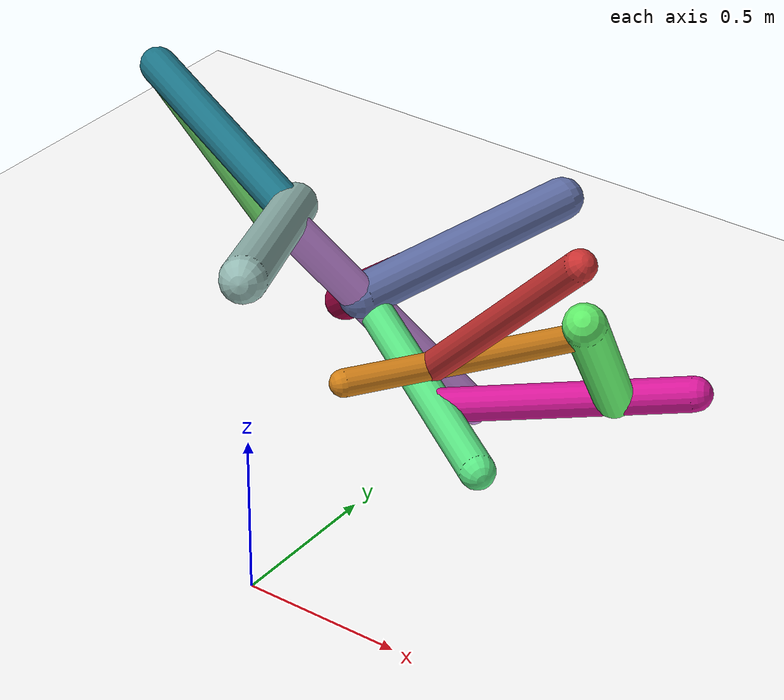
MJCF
<mujoco model="morphology">
  <option timestep="0.01"/>
  <default>
    <default class="/"/>
    <default class="0/"/>
    <default class="0/1/"/>
    <default class="0/1/2/"/>
    <default class="0/3/"/>
    <default class="0/3/4/"/>
    <default class="0/3/4/5/"/>
    <default class="0/3/4/5/6/"/>
    <default class="0/3/4/5/6/7/"/>
    <default class="0/3/4/5/6/7/8/"/>
    <default class="0/3/9/"/>
    <default class="0/3/9/10/"/>
  </default>
  <asset>
    <texture name="texplane" type="2d" builtin="checker" rgb1="0.10000000000000001 0.20000000000000001 0.29999999999999999" rgb2="0.20000000000000001 0.29999999999999999 0.40000000000000002" width="300" height="300"/>
    <material name="MatPlane" class="/" texture="texplane" texrepeat="20 20" specular="1" shininess="1" reflectance="0.5"/>
  </asset>
  <worldbody>
    <light name="//unnamed_light_0" class="/" directional="true" pos="0 0 1.5" dir="0 0 -1.3" cutoff="100" exponent="1" diffuse="1 1 1" specular="0.10000000000000001 0.10000000000000001 0.10000000000000001"/>
    <geom name="ground" class="/" type="plane" size="15 15 0.5" material="MatPlane" rgba="1 1 1 1"/>
    <site name="body" class="/" size="9.9999999999999995e-07 9.9999999999999995e-07 9.9999999999999995e-07" pos="0 0 1.0318636059761048"/>
    <body pos="0 0 1.0318636059761048" name="0/">
      <freejoint name="0/"/>
      <geom name="0/geom" class="0/" type="capsule" contype="1" conaffinity="1" condim="3" size="0.068336899560254766" rgba="0.5885581954393293 0.73568601687289281 0.71047255209427806 1" friction="0.59999999999999998 0.10000000000000001 0.10000000000000001" fromto="0 0 0 -0.39978704759067352 0.74430076005457302 -0.2379741963725347"/>
      <site name="0/end0" class="0/" size="0.0050000000000000001" pos="-0.39978704759067352 0.74430076005457302 -0.2379741963725347"/>
      <site name="0/attach1" class="0/" size="9.9999999999999995e-07 9.9999999999999995e-07 9.9999999999999995e-07" pos="-0.36102633650598853 0.67213827531563575 -0.21490179038340906"/>
      <body pos="-0.36102633650598853 0.67213827531563575 -0.21490179038340906" name="0/1/">
        <joint name="0/1/joint/" class="0/" type="hinge" axis="0 1 0" limited="true" range="-56.78363403545027 56.78363403545027"/>
        <geom name="0/1/geom" class="0/1/" type="capsule" contype="1" conaffinity="1" condim="3" size="0.058904904236065717" rgba="0.10885509416582606 0.46019007337524132 0.53504305222264747 1" friction="0.59999999999999998 0.10000000000000001 0.10000000000000001" fromto="0 0 0 -0.74711531201588155 0.28976524823975258 0.14599575128863229"/>
        <site name="0/1/end1" class="0/1/" size="0.0050000000000000001" pos="-0.74711531201588155 0.28976524823975258 0.14599575128863229"/>
        <site name="0/1/attach2" class="0/1/" size="9.9999999999999995e-07 9.9999999999999995e-07 9.9999999999999995e-07" pos="-0.73947488704344722 0.28680194444556184 0.14450271592170186"/>
        <body pos="-0.73947488704344722 0.28680194444556184 0.14450271592170186" name="0/1/2/">
          <joint name="0/1/2/joint/" class="0/1/" type="hinge" axis="-0.39834816048573363 -0.81913674871922371 -0.41271507112695993" limited="true" range="-37.663630237336633 37.663630237336633"/>
          <geom name="0/1/2/geom" class="0/1/2/" type="capsule" contype="1" conaffinity="1" condim="3" size="0.054754319209131826" rgba="0.41804673174326323 0.82976006626687493 0.39982723925951946 1" friction="0.59999999999999998 0.10000000000000001 0.10000000000000001" fromto="0 0 0 0.34700254124267627 0.11708370875171159 -0.49259959716099239"/>
          <site name="0/1/2/end2" class="0/1/2/" size="0.0050000000000000001" pos="0.34700254124267627 0.11708370875171159 -0.49259959716099239"/>
        </body>
      </body>
      <site name="0/attach3" class="0/" size="9.9999999999999995e-07 9.9999999999999995e-07 9.9999999999999995e-07" pos="-0.30618910669163113 0.57004544345405228 -0.18225979816526963"/>
      <body pos="-0.30618910669163113 0.57004544345405228 -0.18225979816526963" name="0/3/">
        <joint name="0/3/joint/" class="0/" type="hinge" axis="0 0 1" limited="true" range="-68.075280982470517 68.075280982470517"/>
        <geom name="0/3/geom" class="0/3/" type="capsule" contype="1" conaffinity="1" condim="3" size="0.058193082565606909" rgba="0.82978058383089504 0.57952216850923233 0.92671453964288952 1" friction="0.59999999999999998 0.10000000000000001 0.10000000000000001" fromto="0 0 0 0.3683287617090214 0.4558009982762885 -0.74960378385174709"/>
        <site name="0/3/end3" class="0/3/" size="0.0050000000000000001" pos="0.3683287617090214 0.4558009982762885 -0.74960378385174709"/>
        <site name="0/3/attach4" class="0/3/" size="9.9999999999999995e-07 9.9999999999999995e-07 9.9999999999999995e-07" pos="0.17293802433343636 0.21400806107393028 -0.35195458755567033"/>
        <body pos="0.17293802433343636 0.21400806107393028 -0.35195458755567033" name="0/3/4/">
          <joint name="0/3/4/joint/" class="0/3/" type="hinge" axis="-0.92203404995888061 0.20112160773458654 -0.33076171123435577" limited="true" range="-63.777729819706614 63.777729819706614"/>
          <geom name="0/3/4/geom" class="0/3/4/" type="capsule" contype="1" conaffinity="1" condim="3" size="0.053014841186629302" rgba="0.35533491055135813 0.90817863094615148 0.52097804784249035 1" friction="0.59999999999999998 0.10000000000000001 0.10000000000000001" fromto="0 0 0 0.71631052165866937 -0.49904484462467735 -0.01627854569669962"/>
          <site name="0/3/4/end4" class="0/3/4/" size="0.0050000000000000001" pos="0.71631052165866937 -0.49904484462467735 -0.01627854569669962"/>
          <site name="0/3/4/attach5" class="0/3/4/" size="9.9999999999999995e-07 9.9999999999999995e-07 9.9999999999999995e-07" pos="0.43701110002788951 -0.30446032819353042 -0.0099313146277625521"/>
          <body pos="0.43701110002788951 -0.30446032819353042 -0.0099313146277625521" name="0/3/4/5/">
            <joint name="0/3/4/5/joint/" class="0/3/4/" type="hinge" axis="-1.7347234759768071e-18 -0.03260206448912719 0.99946841140230458" limited="true" range="-63.145883576087883 63.145883576087883"/>
            <geom name="0/3/4/5/geom" class="0/3/4/5/" type="capsule" contype="1" conaffinity="1" condim="3" size="0.050649829230339616" rgba="0.84838924889253242 0.089044087319362863 0.60455299455590394 1" friction="0.59999999999999998 0.10000000000000001 0.10000000000000001" fromto="0 0 0 0.71677062808117609 0.21929541036277844 0.19969836592275736"/>
            <site name="0/3/4/5/end5" class="0/3/4/5/" size="0.0050000000000000001" pos="0.71677062808117609 0.21929541036277844 0.19969836592275736"/>
            <site name="0/3/4/5/attach6" class="0/3/4/5/" size="9.9999999999999995e-07 9.9999999999999995e-07 9.9999999999999995e-07" pos="0.49947847726353062 0.15281504758657147 0.13915893287945638"/>
            <body pos="0.49947847726353062 0.15281504758657147 0.13915893287945638" name="0/3/4/5/6/">
              <joint name="0/3/4/5/6/joint/" class="0/3/4/5/" type="hinge" axis="-0.38235452587126767 0.68319048460358933 0.62213807012018729" limited="true" range="-62.748249073533536 62.748249073533536"/>
              <geom name="0/3/4/5/6/geom" class="0/3/4/5/6/" type="capsule" contype="1" conaffinity="1" condim="3" size="0.059035028221691058" rgba="0.37884145428568872 0.93355259890004971 0.41522094097972762 1" friction="0.59999999999999998 0.10000000000000001 0.10000000000000001" fromto="0 0 0 0.16315322461588899 -0.44415052865943661 0.51808322671598717"/>
              <site name="0/3/4/5/6/end6" class="0/3/4/5/6/" size="0.0050000000000000001" pos="0.16315322461588899 -0.44415052865943661 0.51808322671598717"/>
              <site name="0/3/4/5/6/attach7" class="0/3/4/5/6/" size="9.9999999999999995e-07 9.9999999999999995e-07 9.9999999999999995e-07" pos="0.14329275273013006 -0.39008454799461656 0.45501749581854173"/>
              <body pos="0.14329275273013006 -0.39008454799461656 0.45501749581854173" name="0/3/4/5/6/7/">
                <geom name="0/3/4/5/6/7/geom" class="0/3/4/5/6/7/" type="capsule" contype="1" conaffinity="1" condim="3" size="0.036323009586903252" rgba="0.83189649650630426 0.50994267066162735 0.095770425378551738 1" friction="0.59999999999999998 0.10000000000000001 0.10000000000000001" fromto="0 0 0 -0.36215621109000007 -0.57221481833947885 0.013053215990335265"/>
                <site name="0/3/4/5/6/7/end7" class="0/3/4/5/6/7/" size="0.0050000000000000001" pos="-0.36215621109000007 -0.57221481833947885 0.013053215990335265"/>
                <site name="0/3/4/5/6/7/attach8" class="0/3/4/5/6/7/" size="9.9999999999999995e-07 9.9999999999999995e-07 9.9999999999999995e-07" pos="-0.22989135898905708 -0.3632334285412771 0.0082859867408158986"/>
                <body pos="-0.22989135898905708 -0.3632334285412771 0.0082859867408158986" name="0/3/4/5/6/7/8/">
                  <joint name="0/3/4/5/6/7/8/joint/" class="0/3/4/5/6/7/" type="hinge" axis="-1.7347234759768071e-18 0.022805807557005661 0.99973991374840732" limited="true" range="-54.849389669282175 54.849389669282175"/>
                  <geom name="0/3/4/5/6/7/8/geom" class="0/3/4/5/6/7/8/" type="capsule" contype="1" conaffinity="1" condim="3" size="0.040808664640218498" rgba="0.80812288231895768 0.20205492806679271 0.2015992384154075 1" friction="0.59999999999999998 0.10000000000000001 0.10000000000000001" fromto="0 0 0 0.53171057541685052 -0.18818037384897313 0.56585369583035283"/>
                  <site name="0/3/4/5/6/7/8/end8" class="0/3/4/5/6/7/8/" size="0.0050000000000000001" pos="0.53171057541685052 -0.18818037384897313 0.56585369583035283"/>
                </body>
              </body>
            </body>
          </body>
        </body>
        <site name="0/3/attach9" class="0/3/" size="9.9999999999999995e-07 9.9999999999999995e-07 9.9999999999999995e-07" pos="0.14532268911313528 0.17983452191629221 -0.29575327523506073"/>
        <body pos="0.14532268911313528 0.17983452191629221 -0.29575327523506073" name="0/3/9/">
          <joint name="0/3/9/joint/" class="0/3/" type="hinge" axis="5.5511151231257827e-17 0.85444124450816661 0.51954803404818617" limited="true" range="-32.113225342677495 32.113225342677495"/>
          <geom name="0/3/9/geom" class="0/3/9/" type="capsule" contype="1" conaffinity="1" condim="3" size="0.067726335822225522" rgba="0.38472127719556382 0.44384745439779205 0.66376487072310442 1" friction="0.59999999999999998 0.10000000000000001 0.10000000000000001" fromto="0 0 0 0.2402924153323025 0.73203611425615711 0.086432600036130625"/>
          <site name="0/3/9/end9" class="0/3/9/" size="0.0050000000000000001" pos="0.2402924153323025 0.73203611425615711 0.086432600036130625"/>
          <site name="0/3/9/attach10" class="0/3/9/" size="9.9999999999999995e-07 9.9999999999999995e-07 9.9999999999999995e-07" pos="0.069229950359481054 0.21090480022524624 0.024901845535437554"/>
          <body pos="0.069229950359481054 0.21090480022524624 0.024901845535437554" name="0/3/9/10/">
            <joint name="0/3/9/10/joint/" class="0/3/9/" type="hinge" axis="-0.95075764510194383 0.30779725999333696 0.03634208333048404" limited="true" range="-48.839182488207705 48.839182488207705"/>
            <geom name="0/3/9/10/geom" class="0/3/9/10/" type="capsule" contype="1" conaffinity="1" condim="3" size="0.066823643482510131" rgba="0.64478554298642443 0.012583169676117834 0.26508986343450325 1" friction="0.59999999999999998 0.10000000000000001 0.10000000000000001" fromto="0 0 0 -0.46789748471641701 0.23969640553368665 -0.39870912496864741"/>
            <site name="0/3/9/10/end10" class="0/3/9/10/" size="0.0050000000000000001" pos="-0.46789748471641701 0.23969640553368665 -0.39870912496864741"/>
          </body>
        </body>
      </body>
      <camera name="0/iso" class="0/" mode="trackcom" pos="-2.2999999999999998 -2.2999999999999998 1" xyaxes="0.45000000000000001 -0.45000000000000001 0 0.29999999999999999 0.14999999999999999 0.93999999999999995"/>
    </body>
  </worldbody>
  <actuator>
    <motor name="0/1/motor" class="0/1/" ctrllimited="true" ctrlrange="-1 1" gear="83" joint="0/1/joint/"/>
    <motor name="0/1/2/motor" class="0/1/2/" ctrllimited="true" ctrlrange="-1 1" gear="53" joint="0/1/2/joint/"/>
    <motor name="0/3/motor" class="0/3/" ctrllimited="true" ctrlrange="-1 1" gear="94" joint="0/3/joint/"/>
    <motor name="0/3/4/motor" class="0/3/4/" ctrllimited="true" ctrlrange="-1 1" gear="87" joint="0/3/4/joint/"/>
    <motor name="0/3/4/5/motor" class="0/3/4/5/" ctrllimited="true" ctrlrange="-1 1" gear="94" joint="0/3/4/5/joint/"/>
    <motor name="0/3/4/5/6/motor" class="0/3/4/5/6/" ctrllimited="true" ctrlrange="-1 1" gear="55" joint="0/3/4/5/6/joint/"/>
    <motor name="0/3/4/5/6/7/8/motor" class="0/3/4/5/6/7/8/" ctrllimited="true" ctrlrange="-1 1" gear="86" joint="0/3/4/5/6/7/8/joint/"/>
    <motor name="0/3/9/motor" class="0/3/9/" ctrllimited="true" ctrlrange="-1 1" gear="66" joint="0/3/9/joint/"/>
    <motor name="0/3/9/10/motor" class="0/3/9/10/" ctrllimited="true" ctrlrange="-1 1" gear="85" joint="0/3/9/10/joint/"/>
  </actuator>
  <sensor>
    <subtreelinvel name="velocity" body="0/"/>
  </sensor>
</mujoco>
